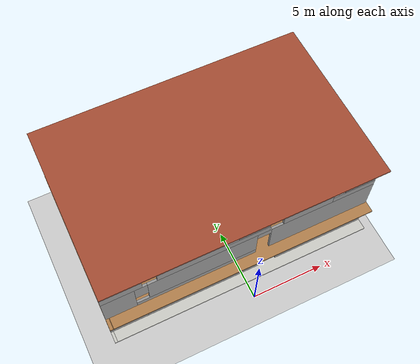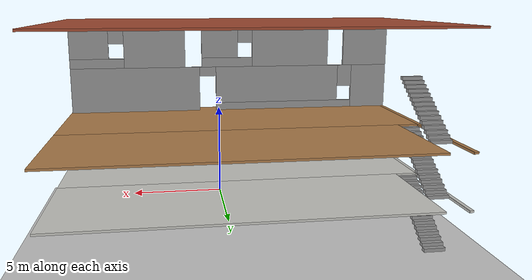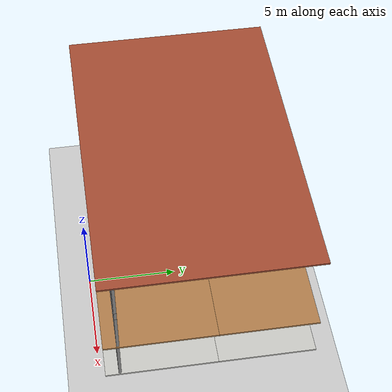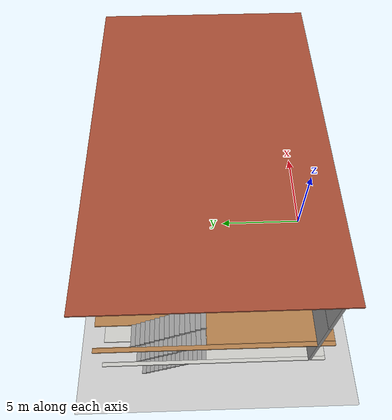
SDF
<sdf version="1.7">
 <world name="default">
  <model name="ground_plane">
   <static>1</static>
   <link name="link">
    <collision name="collision">
     <geometry><plane><normal>0 0 1</normal><size>100 100</size></plane></geometry>
     <surface>
      <contact><collide_bitmask>65535</collide_bitmask></contact>
      <friction><ode><mu>100</mu><mu2>50</mu2></ode></friction>
     </surface>
    </collision>
    <visual name="visual">
     <cast_shadows>0</cast_shadows>
     <geometry><plane><normal>0 0 1</normal><size>100 100</size></plane></geometry>
     <material>
      <script><uri>file://media/materials/scripts/gazebo.material</uri><name>Gazebo/Grey</name></script>
     </material>
    </visual>
   </link>
  </model>
  <model name="saglam_yeni_bina1">
   <pose>-0.684997 5.87917 0 0 -0 0</pose>
   <link name="Floor_4">
    <pose>0.000156 0.0375 2.5 0 -0 0</pose>
    <visual name="Floor_4_Visual_0">
     <pose>-8.68623 0 0.05 0 -0 0</pose>
     <geometry><box><size>0.173766 11.2072 0.1</size></box></geometry>
     <material>
      <script><uri>file://media/materials/scripts/gazebo.material</uri><name>Gazebo/CeilingTiled</name></script>
      <ambient>1 1 1 1</ambient>
     </material>
     <meta><layer>1</layer></meta>
    </visual>
    <collision name="Floor_4_Collision_0">
     <geometry><box><size>0.173766 11.2072 0.1</size></box></geometry>
     <pose>-8.68623 0 0.05 0 -0 0</pose>
    </collision>
    <visual name="Floor_4_Visual_1">
     <pose>0.086883 -2.61131 0.05 0 -0 0</pose>
     <geometry><box><size>17.3725 5.98458 0.1</size></box></geometry>
     <material>
      <script><uri>file://media/materials/scripts/gazebo.material</uri><name>Gazebo/CeilingTiled</name></script>
      <ambient>1 1 1 1</ambient>
     </material>
     <meta><layer>1</layer></meta>
    </visual>
    <collision name="Floor_4_Collision_1">
     <geometry><box><size>17.3725 5.98458 0.1</size></box></geometry>
     <pose>0.086883 -2.61131 0.05 0 -0 0</pose>
    </collision>
    <visual name="Floor_4_Visual_2">
     <pose>0.600108 2.99229 0.05 0 -0 0</pose>
     <geometry><box><size>16.346 5.22262 0.1</size></box></geometry>
     <material>
      <script><uri>file://media/materials/scripts/gazebo.material</uri><name>Gazebo/CeilingTiled</name></script>
      <ambient>1 1 1 1</ambient>
     </material>
     <meta><layer>1</layer></meta>
    </visual>
    <collision name="Floor_4_Collision_2">
     <geometry><box><size>16.346 5.22262 0.1</size></box></geometry>
     <pose>0.600108 2.99229 0.05 0 -0 0</pose>
    </collision>
    <visual name="Floor_4_Visual_3">
     <pose>-8.58612 4.74229 0.05 0 -0 0</pose>
     <geometry><box><size>0.02645 1.72262 0.1</size></box></geometry>
     <material>
      <script><uri>file://media/materials/scripts/gazebo.material</uri><name>Gazebo/CeilingTiled</name></script>
      <ambient>1 1 1 1</ambient>
     </material>
     <meta><layer>1</layer></meta>
    </visual>
    <collision name="Floor_4_Collision_3">
     <geometry><box><size>0.02645 1.72262 0.1</size></box></geometry>
     <pose>-8.58612 4.74229 0.05 0 -0 0</pose>
    </collision>
   </link>
   <link name="Floor_5">
    <pose>0.000156 0.0375 5 0 -0 0</pose>
    <visual name="Floor_5_Visual_0">
     <pose>-8.673 0 0.05 0 -0 0</pose>
     <geometry><box><size>0.200216 11.2072 0.1</size></box></geometry>
     <material>
      <script><uri>file://media/materials/scripts/gazebo.material</uri><name>Gazebo/Wood</name></script>
      <ambient>1 1 1 1</ambient>
     </material>
     <meta><layer>2</layer></meta>
    </visual>
    <collision name="Floor_5_Collision_0">
     <geometry><box><size>0.200216 11.2072 0.1</size></box></geometry>
     <pose>-8.673 0 0.05 0 -0 0</pose>
    </collision>
    <visual name="Floor_5_Visual_1">
     <pose>-8.55967 -2.61131 0.05 0 -0 0</pose>
     <geometry><box><size>0.02645 5.98458 0.1</size></box></geometry>
     <material>
      <script><uri>file://media/materials/scripts/gazebo.material</uri><name>Gazebo/Wood</name></script>
      <ambient>1 1 1 1</ambient>
     </material>
     <meta><layer>2</layer></meta>
    </visual>
    <collision name="Floor_5_Collision_1">
     <geometry><box><size>0.02645 5.98458 0.1</size></box></geometry>
     <pose>-8.55967 -2.61131 0.05 0 -0 0</pose>
    </collision>
    <visual name="Floor_5_Visual_2">
     <pose>0.113333 -2.62454 0.05 0 -0 0</pose>
     <geometry><box><size>17.3195 5.95813 0.1</size></box></geometry>
     <material>
      <script><uri>file://media/materials/scripts/gazebo.material</uri><name>Gazebo/Wood</name></script>
      <ambient>1 1 1 1</ambient>
     </material>
     <meta><layer>2</layer></meta>
    </visual>
    <collision name="Floor_5_Collision_2">
     <geometry><box><size>17.3195 5.95813 0.1</size></box></geometry>
     <pose>0.113333 -2.62454 0.05 0 -0 0</pose>
    </collision>
    <visual name="Floor_5_Visual_3">
     <pose>0.613333 2.97906 0.05 0 -0 0</pose>
     <geometry><box><size>16.3195 5.24907 0.1</size></box></geometry>
     <material>
      <script><uri>file://media/materials/scripts/gazebo.material</uri><name>Gazebo/Wood</name></script>
      <ambient>1 1 1 1</ambient>
     </material>
     <meta><layer>2</layer></meta>
    </visual>
    <collision name="Floor_5_Collision_3">
     <geometry><box><size>16.3195 5.24907 0.1</size></box></geometry>
     <pose>0.613333 2.97906 0.05 0 -0 0</pose>
    </collision>
    <visual name="Floor_5_Visual_4">
     <pose>-8.55967 4.74229 0.05 0 -0 0</pose>
     <geometry><box><size>0.02645 1.72262 0.1</size></box></geometry>
     <material>
      <script><uri>file://media/materials/scripts/gazebo.material</uri><name>Gazebo/Wood</name></script>
      <ambient>1 1 1 1</ambient>
     </material>
     <meta><layer>2</layer></meta>
    </visual>
    <collision name="Floor_5_Collision_4">
     <geometry><box><size>0.02645 1.72262 0.1</size></box></geometry>
     <pose>-8.55967 4.74229 0.05 0 -0 0</pose>
    </collision>
   </link>
   <link name="Floor_8">
    <collision name="Floor_8_Collision">
     <geometry><box><size>17.5462 11.2072 0.1</size></box></geometry>
     <pose>0 0 0.05 0 -0 0</pose>
    </collision>
    <visual name="Floor_8_Visual">
     <pose>0 0 0.05 0 -0 0</pose>
     <geometry><box><size>17.5462 11.2072 0.1</size></box></geometry>
     <material>
      <script><uri>file://media/materials/scripts/gazebo.material</uri><name>Gazebo/Bricks</name></script>
      <ambient>0.921569 0.807843 0.615686 1</ambient>
     </material>
     <meta><layer>4</layer></meta>
    </visual>
    <pose>-0.000157 0.037447 10 0 -0 0</pose>
   </link>
   <link name="Stairs_1">
    <visual name="Stairs_1_Visual_0">
     <pose>-8.09919 3.80181 0.083333 0 -0 0</pose>
     <geometry><box><size>1 0.233333 0.166667</size></box></geometry>
     <material>
      <script><uri>file://media/materials/scripts/gazebo.material</uri><name>Gazebo/Grey</name></script>
      <ambient>1 1 1 1</ambient>
     </material>
     <meta><layer>0</layer></meta>
    </visual>
    <collision name="Stairs_1_Collision_0">
     <geometry><box><size>1 0.233333 0.166667</size></box></geometry>
     <pose>-8.09919 3.80181 0.083333 0 -0 0</pose>
    </collision>
    <visual name="Stairs_1_Visual_1">
     <pose>-8.09919 3.56848 0.25 0 -0 0</pose>
     <geometry><box><size>1 0.233333 0.166667</size></box></geometry>
     <material>
      <script><uri>file://media/materials/scripts/gazebo.material</uri><name>Gazebo/Grey</name></script>
      <ambient>1 1 1 1</ambient>
     </material>
     <meta><layer>0</layer></meta>
    </visual>
    <collision name="Stairs_1_Collision_1">
     <geometry><box><size>1 0.233333 0.166667</size></box></geometry>
     <pose>-8.09919 3.56848 0.25 0 -0 0</pose>
    </collision>
    <visual name="Stairs_1_Visual_2">
     <pose>-8.09919 3.33514 0.416667 0 -0 0</pose>
     <geometry><box><size>1 0.233333 0.166667</size></box></geometry>
     <material>
      <script><uri>file://media/materials/scripts/gazebo.material</uri><name>Gazebo/Grey</name></script>
      <ambient>1 1 1 1</ambient>
     </material>
     <meta><layer>0</layer></meta>
    </visual>
    <collision name="Stairs_1_Collision_2">
     <geometry><box><size>1 0.233333 0.166667</size></box></geometry>
     <pose>-8.09919 3.33514 0.416667 0 -0 0</pose>
    </collision>
    <visual name="Stairs_1_Visual_3">
     <pose>-8.09919 3.10181 0.583333 0 -0 0</pose>
     <geometry><box><size>1 0.233333 0.166667</size></box></geometry>
     <material>
      <script><uri>file://media/materials/scripts/gazebo.material</uri><name>Gazebo/Grey</name></script>
      <ambient>1 1 1 1</ambient>
     </material>
     <meta><layer>0</layer></meta>
    </visual>
    <collision name="Stairs_1_Collision_3">
     <geometry><box><size>1 0.233333 0.166667</size></box></geometry>
     <pose>-8.09919 3.10181 0.583333 0 -0 0</pose>
    </collision>
    <visual name="Stairs_1_Visual_4">
     <pose>-8.09919 2.86848 0.75 0 -0 0</pose>
     <geometry><box><size>1 0.233333 0.166667</size></box></geometry>
     <material>
      <script><uri>file://media/materials/scripts/gazebo.material</uri><name>Gazebo/Grey</name></script>
      <ambient>1 1 1 1</ambient>
     </material>
     <meta><layer>0</layer></meta>
    </visual>
    <collision name="Stairs_1_Collision_4">
     <geometry><box><size>1 0.233333 0.166667</size></box></geometry>
     <pose>-8.09919 2.86848 0.75 0 -0 0</pose>
    </collision>
    <visual name="Stairs_1_Visual_5">
     <pose>-8.09919 2.63514 0.916667 0 -0 0</pose>
     <geometry><box><size>1 0.233333 0.166667</size></box></geometry>
     <material>
      <script><uri>file://media/materials/scripts/gazebo.material</uri><name>Gazebo/Grey</name></script>
      <ambient>1 1 1 1</ambient>
     </material>
     <meta><layer>0</layer></meta>
    </visual>
    <collision name="Stairs_1_Collision_5">
     <geometry><box><size>1 0.233333 0.166667</size></box></geometry>
     <pose>-8.09919 2.63514 0.916667 0 -0 0</pose>
    </collision>
    <visual name="Stairs_1_Visual_6">
     <pose>-8.09919 2.40181 1.08333 0 -0 0</pose>
     <geometry><box><size>1 0.233333 0.166667</size></box></geometry>
     <material>
      <script><uri>file://media/materials/scripts/gazebo.material</uri><name>Gazebo/Grey</name></script>
      <ambient>1 1 1 1</ambient>
     </material>
     <meta><layer>0</layer></meta>
    </visual>
    <collision name="Stairs_1_Collision_6">
     <geometry><box><size>1 0.233333 0.166667</size></box></geometry>
     <pose>-8.09919 2.40181 1.08333 0 -0 0</pose>
    </collision>
    <visual name="Stairs_1_Visual_7">
     <pose>-8.09919 2.16848 1.25 0 -0 0</pose>
     <geometry><box><size>1 0.233333 0.166667</size></box></geometry>
     <material>
      <script><uri>file://media/materials/scripts/gazebo.material</uri><name>Gazebo/Grey</name></script>
      <ambient>1 1 1 1</ambient>
     </material>
     <meta><layer>0</layer></meta>
    </visual>
    <collision name="Stairs_1_Collision_7">
     <geometry><box><size>1 0.233333 0.166667</size></box></geometry>
     <pose>-8.09919 2.16848 1.25 0 -0 0</pose>
    </collision>
    <visual name="Stairs_1_Visual_8">
     <pose>-8.09919 1.93514 1.41667 0 -0 0</pose>
     <geometry><box><size>1 0.233333 0.166667</size></box></geometry>
     <material>
      <script><uri>file://media/materials/scripts/gazebo.material</uri><name>Gazebo/Grey</name></script>
      <ambient>1 1 1 1</ambient>
     </material>
     <meta><layer>0</layer></meta>
    </visual>
    <collision name="Stairs_1_Collision_8">
     <geometry><box><size>1 0.233333 0.166667</size></box></geometry>
     <pose>-8.09919 1.93514 1.41667 0 -0 0</pose>
    </collision>
    <visual name="Stairs_1_Visual_9">
     <pose>-8.09919 1.70181 1.58333 0 -0 0</pose>
     <geometry><box><size>1 0.233333 0.166667</size></box></geometry>
     <material>
      <script><uri>file://media/materials/scripts/gazebo.material</uri><name>Gazebo/Grey</name></script>
      <ambient>1 1 1 1</ambient>
     </material>
     <meta><layer>0</layer></meta>
    </visual>
    <collision name="Stairs_1_Collision_9">
     <geometry><box><size>1 0.233333 0.166667</size></box></geometry>
     <pose>-8.09919 1.70181 1.58333 0 -0 0</pose>
    </collision>
    <visual name="Stairs_1_Visual_10">
     <pose>-8.09919 1.46848 1.75 0 -0 0</pose>
     <geometry><box><size>1 0.233333 0.166667</size></box></geometry>
     <material>
      <script><uri>file://media/materials/scripts/gazebo.material</uri><name>Gazebo/Grey</name></script>
      <ambient>1 1 1 1</ambient>
     </material>
     <meta><layer>0</layer></meta>
    </visual>
    <collision name="Stairs_1_Collision_10">
     <geometry><box><size>1 0.233333 0.166667</size></box></geometry>
     <pose>-8.09919 1.46848 1.75 0 -0 0</pose>
    </collision>
    <visual name="Stairs_1_Visual_11">
     <pose>-8.09919 1.23514 1.91667 0 -0 0</pose>
     <geometry><box><size>1 0.233333 0.166667</size></box></geometry>
     <material>
      <script><uri>file://media/materials/scripts/gazebo.material</uri><name>Gazebo/Grey</name></script>
      <ambient>1 1 1 1</ambient>
     </material>
     <meta><layer>0</layer></meta>
    </visual>
    <collision name="Stairs_1_Collision_11">
     <geometry><box><size>1 0.233333 0.166667</size></box></geometry>
     <pose>-8.09919 1.23514 1.91667 0 -0 0</pose>
    </collision>
    <visual name="Stairs_1_Visual_12">
     <pose>-8.09919 1.00181 2.08333 0 -0 0</pose>
     <geometry><box><size>1 0.233333 0.166667</size></box></geometry>
     <material>
      <script><uri>file://media/materials/scripts/gazebo.material</uri><name>Gazebo/Grey</name></script>
      <ambient>1 1 1 1</ambient>
     </material>
     <meta><layer>0</layer></meta>
    </visual>
    <collision name="Stairs_1_Collision_12">
     <geometry><box><size>1 0.233333 0.166667</size></box></geometry>
     <pose>-8.09919 1.00181 2.08333 0 -0 0</pose>
    </collision>
    <visual name="Stairs_1_Visual_13">
     <pose>-8.09919 0.768477 2.25 0 -0 0</pose>
     <geometry><box><size>1 0.233333 0.166667</size></box></geometry>
     <material>
      <script><uri>file://media/materials/scripts/gazebo.material</uri><name>Gazebo/Grey</name></script>
      <ambient>1 1 1 1</ambient>
     </material>
     <meta><layer>0</layer></meta>
    </visual>
    <collision name="Stairs_1_Collision_13">
     <geometry><box><size>1 0.233333 0.166667</size></box></geometry>
     <pose>-8.09919 0.768477 2.25 0 -0 0</pose>
    </collision>
    <visual name="Stairs_1_Visual_14">
     <pose>-8.09919 0.535143 2.41667 0 -0 0</pose>
     <geometry><box><size>1 0.233333 0.166667</size></box></geometry>
     <material>
      <script><uri>file://media/materials/scripts/gazebo.material</uri><name>Gazebo/Grey</name></script>
      <ambient>1 1 1 1</ambient>
     </material>
     <meta><layer>0</layer></meta>
    </visual>
    <collision name="Stairs_1_Collision_14">
     <geometry><box><size>1 0.233333 0.166667</size></box></geometry>
     <pose>-8.09919 0.535143 2.41667 0 -0 0</pose>
    </collision>
   </link>
   <link name="Stairs_2">
    <visual name="Stairs_2_Visual_0">
     <pose>-8.07274 3.80181 2.58333 0 -0 0</pose>
     <geometry><box><size>1 0.233333 0.166667</size></box></geometry>
     <material>
      <script><uri>file://media/materials/scripts/gazebo.material</uri><name>Gazebo/Grey</name></script>
      <ambient>1 1 1 1</ambient>
     </material>
     <meta><layer>1</layer></meta>
    </visual>
    <collision name="Stairs_2_Collision_0">
     <geometry><box><size>1 0.233333 0.166667</size></box></geometry>
     <pose>-8.07274 3.80181 2.58333 0 -0 0</pose>
    </collision>
    <visual name="Stairs_2_Visual_1">
     <pose>-8.07274 3.56848 2.75 0 -0 0</pose>
     <geometry><box><size>1 0.233333 0.166667</size></box></geometry>
     <material>
      <script><uri>file://media/materials/scripts/gazebo.material</uri><name>Gazebo/Grey</name></script>
      <ambient>1 1 1 1</ambient>
     </material>
     <meta><layer>1</layer></meta>
    </visual>
    <collision name="Stairs_2_Collision_1">
     <geometry><box><size>1 0.233333 0.166667</size></box></geometry>
     <pose>-8.07274 3.56848 2.75 0 -0 0</pose>
    </collision>
    <visual name="Stairs_2_Visual_2">
     <pose>-8.07274 3.33514 2.91667 0 -0 0</pose>
     <geometry><box><size>1 0.233333 0.166667</size></box></geometry>
     <material>
      <script><uri>file://media/materials/scripts/gazebo.material</uri><name>Gazebo/Grey</name></script>
      <ambient>1 1 1 1</ambient>
     </material>
     <meta><layer>1</layer></meta>
    </visual>
    <collision name="Stairs_2_Collision_2">
     <geometry><box><size>1 0.233333 0.166667</size></box></geometry>
     <pose>-8.07274 3.33514 2.91667 0 -0 0</pose>
    </collision>
    <visual name="Stairs_2_Visual_3">
     <pose>-8.07274 3.10181 3.08333 0 -0 0</pose>
     <geometry><box><size>1 0.233333 0.166667</size></box></geometry>
     <material>
      <script><uri>file://media/materials/scripts/gazebo.material</uri><name>Gazebo/Grey</name></script>
      <ambient>1 1 1 1</ambient>
     </material>
     <meta><layer>1</layer></meta>
    </visual>
    <collision name="Stairs_2_Collision_3">
     <geometry><box><size>1 0.233333 0.166667</size></box></geometry>
     <pose>-8.07274 3.10181 3.08333 0 -0 0</pose>
    </collision>
    <visual name="Stairs_2_Visual_4">
     <pose>-8.07274 2.86848 3.25 0 -0 0</pose>
     <geometry><box><size>1 0.233333 0.166667</size></box></geometry>
     <material>
      <script><uri>file://media/materials/scripts/gazebo.material</uri><name>Gazebo/Grey</name></script>
      <ambient>1 1 1 1</ambient>
     </material>
     <meta><layer>1</layer></meta>
    </visual>
    <collision name="Stairs_2_Collision_4">
     <geometry><box><size>1 0.233333 0.166667</size></box></geometry>
     <pose>-8.07274 2.86848 3.25 0 -0 0</pose>
    </collision>
    <visual name="Stairs_2_Visual_5">
     <pose>-8.07274 2.63514 3.41667 0 -0 0</pose>
     <geometry><box><size>1 0.233333 0.166667</size></box></geometry>
     <material>
      <script><uri>file://media/materials/scripts/gazebo.material</uri><name>Gazebo/Grey</name></script>
      <ambient>1 1 1 1</ambient>
     </material>
     <meta><layer>1</layer></meta>
    </visual>
    <collision name="Stairs_2_Collision_5">
     <geometry><box><size>1 0.233333 0.166667</size></box></geometry>
     <pose>-8.07274 2.63514 3.41667 0 -0 0</pose>
    </collision>
    <visual name="Stairs_2_Visual_6">
     <pose>-8.07274 2.40181 3.58333 0 -0 0</pose>
     <geometry><box><size>1 0.233333 0.166667</size></box></geometry>
     <material>
      <script><uri>file://media/materials/scripts/gazebo.material</uri><name>Gazebo/Grey</name></script>
      <ambient>1 1 1 1</ambient>
     </material>
     <meta><layer>1</layer></meta>
    </visual>
    <collision name="Stairs_2_Collision_6">
     <geometry><box><size>1 0.233333 0.166667</size></box></geometry>
     <pose>-8.07274 2.40181 3.58333 0 -0 0</pose>
    </collision>
    <visual name="Stairs_2_Visual_7">
     <pose>-8.07274 2.16848 3.75 0 -0 0</pose>
     <geometry><box><size>1 0.233333 0.166667</size></box></geometry>
     <material>
      <script><uri>file://media/materials/scripts/gazebo.material</uri><name>Gazebo/Grey</name></script>
      <ambient>1 1 1 1</ambient>
     </material>
     <meta><layer>1</layer></meta>
    </visual>
    <collision name="Stairs_2_Collision_7">
     <geometry><box><size>1 0.233333 0.166667</size></box></geometry>
     <pose>-8.07274 2.16848 3.75 0 -0 0</pose>
    </collision>
    <visual name="Stairs_2_Visual_8">
     <pose>-8.07274 1.93514 3.91667 0 -0 0</pose>
     <geometry><box><size>1 0.233333 0.166667</size></box></geometry>
     <material>
      <script><uri>file://media/materials/scripts/gazebo.material</uri><name>Gazebo/Grey</name></script>
      <ambient>1 1 1 1</ambient>
     </material>
     <meta><layer>1</layer></meta>
    </visual>
    <collision name="Stairs_2_Collision_8">
     <geometry><box><size>1 0.233333 0.166667</size></box></geometry>
     <pose>-8.07274 1.93514 3.91667 0 -0 0</pose>
    </collision>
    <visual name="Stairs_2_Visual_9">
     <pose>-8.07274 1.70181 4.08333 0 -0 0</pose>
     <geometry><box><size>1 0.233333 0.166667</size></box></geometry>
     <material>
      <script><uri>file://media/materials/scripts/gazebo.material</uri><name>Gazebo/Grey</name></script>
      <ambient>1 1 1 1</ambient>
     </material>
     <meta><layer>1</layer></meta>
    </visual>
    <collision name="Stairs_2_Collision_9">
     <geometry><box><size>1 0.233333 0.166667</size></box></geometry>
     <pose>-8.07274 1.70181 4.08333 0 -0 0</pose>
    </collision>
    <visual name="Stairs_2_Visual_10">
     <pose>-8.07274 1.46848 4.25 0 -0 0</pose>
     <geometry><box><size>1 0.233333 0.166667</size></box></geometry>
     <material>
      <script><uri>file://media/materials/scripts/gazebo.material</uri><name>Gazebo/Grey</name></script>
      <ambient>1 1 1 1</ambient>
     </material>
     <meta><layer>1</layer></meta>
    </visual>
    <collision name="Stairs_2_Collision_10">
     <geometry><box><size>1 0.233333 0.166667</size></box></geometry>
     <pose>-8.07274 1.46848 4.25 0 -0 0</pose>
    </collision>
    <visual name="Stairs_2_Visual_11">
     <pose>-8.07274 1.23514 4.41667 0 -0 0</pose>
     <geometry><box><size>1 0.233333 0.166667</size></box></geometry>
     <material>
      <script><uri>file://media/materials/scripts/gazebo.material</uri><name>Gazebo/Grey</name></script>
      <ambient>1 1 1 1</ambient>
     </material>
     <meta><layer>1</layer></meta>
    </visual>
    <collision name="Stairs_2_Collision_11">
     <geometry><box><size>1 0.233333 0.166667</size></box></geometry>
     <pose>-8.07274 1.23514 4.41667 0 -0 0</pose>
    </collision>
    <visual name="Stairs_2_Visual_12">
     <pose>-8.07274 1.00181 4.58333 0 -0 0</pose>
     <geometry><box><size>1 0.233333 0.166667</size></box></geometry>
     <material>
      <script><uri>file://media/materials/scripts/gazebo.material</uri><name>Gazebo/Grey</name></script>
      <ambient>1 1 1 1</ambient>
     </material>
     <meta><layer>1</layer></meta>
    </visual>
    <collision name="Stairs_2_Collision_12">
     <geometry><box><size>1 0.233333 0.166667</size></box></geometry>
     <pose>-8.07274 1.00181 4.58333 0 -0 0</pose>
    </collision>
    <visual name="Stairs_2_Visual_13">
     <pose>-8.07274 0.768477 4.75 0 -0 0</pose>
     <geometry><box><size>1 0.233333 0.166667</size></box></geometry>
     <material>
      <script><uri>file://media/materials/scripts/gazebo.material</uri><name>Gazebo/Grey</name></script>
      <ambient>1 1 1 1</ambient>
     </material>
     <meta><layer>1</layer></meta>
    </visual>
    <collision name="Stairs_2_Collision_13">
     <geometry><box><size>1 0.233333 0.166667</size></box></geometry>
     <pose>-8.07274 0.768477 4.75 0 -0 0</pose>
    </collision>
    <visual name="Stairs_2_Visual_14">
     <pose>-8.07274 0.535143 4.91667 0 -0 0</pose>
     <geometry><box><size>1 0.233333 0.166667</size></box></geometry>
     <material>
      <script><uri>file://media/materials/scripts/gazebo.material</uri><name>Gazebo/Grey</name></script>
      <ambient>1 1 1 1</ambient>
     </material>
     <meta><layer>1</layer></meta>
    </visual>
    <collision name="Stairs_2_Collision_14">
     <geometry><box><size>1 0.233333 0.166667</size></box></geometry>
     <pose>-8.07274 0.535143 4.91667 0 -0 0</pose>
    </collision>
   </link>
   <link name="Stairs_3">
    <visual name="Stairs_3_Visual_0">
     <pose>-8.04629 3.77536 5.08333 0 -0 0</pose>
     <geometry><box><size>1 0.233333 0.166667</size></box></geometry>
     <material>
      <script><uri>file://media/materials/scripts/gazebo.material</uri><name>Gazebo/Grey</name></script>
      <ambient>1 1 1 1</ambient>
     </material>
     <meta><layer>2</layer></meta>
    </visual>
    <collision name="Stairs_3_Collision_0">
     <geometry><box><size>1 0.233333 0.166667</size></box></geometry>
     <pose>-8.04629 3.77536 5.08333 0 -0 0</pose>
    </collision>
    <visual name="Stairs_3_Visual_1">
     <pose>-8.04629 3.54203 5.25 0 -0 0</pose>
     <geometry><box><size>1 0.233333 0.166667</size></box></geometry>
     <material>
      <script><uri>file://media/materials/scripts/gazebo.material</uri><name>Gazebo/Grey</name></script>
      <ambient>1 1 1 1</ambient>
     </material>
     <meta><layer>2</layer></meta>
    </visual>
    <collision name="Stairs_3_Collision_1">
     <geometry><box><size>1 0.233333 0.166667</size></box></geometry>
     <pose>-8.04629 3.54203 5.25 0 -0 0</pose>
    </collision>
    <visual name="Stairs_3_Visual_2">
     <pose>-8.04629 3.30869 5.41667 0 -0 0</pose>
     <geometry><box><size>1 0.233333 0.166667</size></box></geometry>
     <material>
      <script><uri>file://media/materials/scripts/gazebo.material</uri><name>Gazebo/Grey</name></script>
      <ambient>1 1 1 1</ambient>
     </material>
     <meta><layer>2</layer></meta>
    </visual>
    <collision name="Stairs_3_Collision_2">
     <geometry><box><size>1 0.233333 0.166667</size></box></geometry>
     <pose>-8.04629 3.30869 5.41667 0 -0 0</pose>
    </collision>
    <visual name="Stairs_3_Visual_3">
     <pose>-8.04629 3.07536 5.58333 0 -0 0</pose>
     <geometry><box><size>1 0.233333 0.166667</size></box></geometry>
     <material>
      <script><uri>file://media/materials/scripts/gazebo.material</uri><name>Gazebo/Grey</name></script>
      <ambient>1 1 1 1</ambient>
     </material>
     <meta><layer>2</layer></meta>
    </visual>
    <collision name="Stairs_3_Collision_3">
     <geometry><box><size>1 0.233333 0.166667</size></box></geometry>
     <pose>-8.04629 3.07536 5.58333 0 -0 0</pose>
    </collision>
    <visual name="Stairs_3_Visual_4">
     <pose>-8.04629 2.84203 5.75 0 -0 0</pose>
     <geometry><box><size>1 0.233333 0.166667</size></box></geometry>
     <material>
      <script><uri>file://media/materials/scripts/gazebo.material</uri><name>Gazebo/Grey</name></script>
      <ambient>1 1 1 1</ambient>
     </material>
     <meta><layer>2</layer></meta>
    </visual>
    <collision name="Stairs_3_Collision_4">
     <geometry><box><size>1 0.233333 0.166667</size></box></geometry>
     <pose>-8.04629 2.84203 5.75 0 -0 0</pose>
    </collision>
    <visual name="Stairs_3_Visual_5">
     <pose>-8.04629 2.60869 5.91667 0 -0 0</pose>
     <geometry><box><size>1 0.233333 0.166667</size></box></geometry>
     <material>
      <script><uri>file://media/materials/scripts/gazebo.material</uri><name>Gazebo/Grey</name></script>
      <ambient>1 1 1 1</ambient>
     </material>
     <meta><layer>2</layer></meta>
    </visual>
    <collision name="Stairs_3_Collision_5">
     <geometry><box><size>1 0.233333 0.166667</size></box></geometry>
     <pose>-8.04629 2.60869 5.91667 0 -0 0</pose>
    </collision>
    <visual name="Stairs_3_Visual_6">
     <pose>-8.04629 2.37536 6.08333 0 -0 0</pose>
     <geometry><box><size>1 0.233333 0.166667</size></box></geometry>
     <material>
      <script><uri>file://media/materials/scripts/gazebo.material</uri><name>Gazebo/Grey</name></script>
      <ambient>1 1 1 1</ambient>
     </material>
     <meta><layer>2</layer></meta>
    </visual>
    <collision name="Stairs_3_Collision_6">
     <geometry><box><size>1 0.233333 0.166667</size></box></geometry>
     <pose>-8.04629 2.37536 6.08333 0 -0 0</pose>
    </collision>
    <visual name="Stairs_3_Visual_7">
     <pose>-8.04629 2.14203 6.25 0 -0 0</pose>
     <geometry><box><size>1 0.233333 0.166667</size></box></geometry>
     <material>
      <script><uri>file://media/materials/scripts/gazebo.material</uri><name>Gazebo/Grey</name></script>
      <ambient>1 1 1 1</ambient>
     </material>
     <meta><layer>2</layer></meta>
    </visual>
    <collision name="Stairs_3_Collision_7">
     <geometry><box><size>1 0.233333 0.166667</size></box></geometry>
     <pose>-8.04629 2.14203 6.25 0 -0 0</pose>
    </collision>
    <visual name="Stairs_3_Visual_8">
     <pose>-8.04629 1.90869 6.41667 0 -0 0</pose>
     <geometry><box><size>1 0.233333 0.166667</size></box></geometry>
     <material>
      <script><uri>file://media/materials/scripts/gazebo.material</uri><name>Gazebo/Grey</name></script>
      <ambient>1 1 1 1</ambient>
     </material>
     <meta><layer>2</layer></meta>
    </visual>
    <collision name="Stairs_3_Collision_8">
     <geometry><box><size>1 0.233333 0.166667</size></box></geometry>
     <pose>-8.04629 1.90869 6.41667 0 -0 0</pose>
    </collision>
    <visual name="Stairs_3_Visual_9">
     <pose>-8.04629 1.67536 6.58333 0 -0 0</pose>
     <geometry><box><size>1 0.233333 0.166667</size></box></geometry>
     <material>
      <script><uri>file://media/materials/scripts/gazebo.material</uri><name>Gazebo/Grey</name></script>
      <ambient>1 1 1 1</ambient>
     </material>
     <meta><layer>2</layer></meta>
    </visual>
    <collision name="Stairs_3_Collision_9">
     <geometry><box><size>1 0.233333 0.166667</size></box></geometry>
     <pose>-8.04629 1.67536 6.58333 0 -0 0</pose>
    </collision>
    <visual name="Stairs_3_Visual_10">
     <pose>-8.04629 1.44203 6.75 0 -0 0</pose>
     <geometry><box><size>1 0.233333 0.166667</size></box></geometry>
     <material>
      <script><uri>file://media/materials/scripts/gazebo.material</uri><name>Gazebo/Grey</name></script>
      <ambient>1 1 1 1</ambient>
     </material>
     <meta><layer>2</layer></meta>
    </visual>
    <collision name="Stairs_3_Collision_10">
     <geometry><box><size>1 0.233333 0.166667</size></box></geometry>
     <pose>-8.04629 1.44203 6.75 0 -0 0</pose>
    </collision>
    <visual name="Stairs_3_Visual_11">
     <pose>-8.04629 1.20869 6.91667 0 -0 0</pose>
     <geometry><box><size>1 0.233333 0.166667</size></box></geometry>
     <material>
      <script><uri>file://media/materials/scripts/gazebo.material</uri><name>Gazebo/Grey</name></script>
      <ambient>1 1 1 1</ambient>
     </material>
     <meta><layer>2</layer></meta>
    </visual>
    <collision name="Stairs_3_Collision_11">
     <geometry><box><size>1 0.233333 0.166667</size></box></geometry>
     <pose>-8.04629 1.20869 6.91667 0 -0 0</pose>
    </collision>
    <visual name="Stairs_3_Visual_12">
     <pose>-8.04629 0.97536 7.08333 0 -0 0</pose>
     <geometry><box><size>1 0.233333 0.166667</size></box></geometry>
     <material>
      <script><uri>file://media/materials/scripts/gazebo.material</uri><name>Gazebo/Grey</name></script>
      <ambient>1 1 1 1</ambient>
     </material>
     <meta><layer>2</layer></meta>
    </visual>
    <collision name="Stairs_3_Collision_12">
     <geometry><box><size>1 0.233333 0.166667</size></box></geometry>
     <pose>-8.04629 0.97536 7.08333 0 -0 0</pose>
    </collision>
    <visual name="Stairs_3_Visual_13">
     <pose>-8.04629 0.742026 7.25 0 -0 0</pose>
     <geometry><box><size>1 0.233333 0.166667</size></box></geometry>
     <material>
      <script><uri>file://media/materials/scripts/gazebo.material</uri><name>Gazebo/Grey</name></script>
      <ambient>1 1 1 1</ambient>
     </material>
     <meta><layer>2</layer></meta>
    </visual>
    <collision name="Stairs_3_Collision_13">
     <geometry><box><size>1 0.233333 0.166667</size></box></geometry>
     <pose>-8.04629 0.742026 7.25 0 -0 0</pose>
    </collision>
    <visual name="Stairs_3_Visual_14">
     <pose>-8.04629 0.508693 7.41667 0 -0 0</pose>
     <geometry><box><size>1 0.233333 0.166667</size></box></geometry>
     <material>
      <script><uri>file://media/materials/scripts/gazebo.material</uri><name>Gazebo/Grey</name></script>
      <ambient>1 1 1 1</ambient>
     </material>
     <meta><layer>2</layer></meta>
    </visual>
    <collision name="Stairs_3_Collision_14">
     <geometry><box><size>1 0.233333 0.166667</size></box></geometry>
     <pose>-8.04629 0.508693 7.41667 0 -0 0</pose>
    </collision>
   </link>
   <link name="Wall_49">
    <pose>-0.022952 -4.7839 2.5 0 -0 0</pose>
    <visual name="Wall_49_Visual_0">
     <pose>-7.49981 0 1.25 0 -0 0</pose>
     <geometry><box><size>2.50039 0.15 2.5</size></box></geometry>
     <material>
      <script><uri>file://media/materials/scripts/gazebo.material</uri><name>Gazebo/Grey</name></script>
      <ambient>1 1 1 1</ambient>
     </material>
     <meta><layer>1</layer></meta>
    </visual>
    <collision name="Wall_49_Collision_0">
     <geometry><box><size>2.50039 0.15 2.5</size></box></geometry>
     <pose>-7.49981 0 1.25 0 -0 0</pose>
    </collision>
    <visual name="Wall_49_Visual_1">
     <pose>5.63534 0 1.25 0 -0 0</pose>
     <geometry><box><size>6.22933 0.15 2.5</size></box></geometry>
     <material>
      <script><uri>file://media/materials/scripts/gazebo.material</uri><name>Gazebo/Grey</name></script>
      <ambient>1 1 1 1</ambient>
     </material>
     <meta><layer>1</layer></meta>
    </visual>
    <collision name="Wall_49_Collision_1">
     <geometry><box><size>6.22933 0.15 2.5</size></box></geometry>
     <pose>5.63534 0 1.25 0 -0 0</pose>
    </collision>
    <visual name="Wall_49_Visual_2">
     <pose>-2.31447 0 0.25 0 -0 0</pose>
     <geometry><box><size>7.87029 0.15 0.5</size></box></geometry>
     <material>
      <script><uri>file://media/materials/scripts/gazebo.material</uri><name>Gazebo/Grey</name></script>
      <ambient>1 1 1 1</ambient>
     </material>
     <meta><layer>1</layer></meta>
    </visual>
    <collision name="Wall_49_Collision_2">
     <geometry><box><size>7.87029 0.15 0.5</size></box></geometry>
     <pose>-2.31447 0 0.25 0 -0 0</pose>
    </collision>
    <visual name="Wall_49_Visual_3">
     <pose>-1.91447 0 1.5 0 -0 0</pose>
     <geometry><box><size>7.07029 0.15 2</size></box></geometry>
     <material>
      <script><uri>file://media/materials/scripts/gazebo.material</uri><name>Gazebo/Grey</name></script>
      <ambient>1 1 1 1</ambient>
     </material>
     <meta><layer>1</layer></meta>
    </visual>
    <collision name="Wall_49_Collision_3">
     <geometry><box><size>7.07029 0.15 2</size></box></geometry>
     <pose>-1.91447 0 1.5 0 -0 0</pose>
    </collision>
    <visual name="Wall_49_Visual_4">
     <pose>-5.84962 0 1.9 0 -0 0</pose>
     <geometry><box><size>0.8 0.15 1.2</size></box></geometry>
     <material>
      <script><uri>file://media/materials/scripts/gazebo.material</uri><name>Gazebo/Grey</name></script>
      <ambient>1 1 1 1</ambient>
     </material>
     <meta><layer>1</layer></meta>
    </visual>
    <collision name="Wall_49_Collision_4">
     <geometry><box><size>0.8 0.15 1.2</size></box></geometry>
     <pose>-5.84962 0 1.9 0 -0 0</pose>
    </collision>
    <visual name="Wall_49_Visual_5">
     <pose>2.07068 0 2.25 0 -0 0</pose>
     <geometry><box><size>0.9 0.15 0.5</size></box></geometry>
     <material>
      <script><uri>file://media/materials/scripts/gazebo.material</uri><name>Gazebo/Grey</name></script>
      <ambient>1 1 1 1</ambient>
     </material>
     <meta><layer>1</layer></meta>
    </visual>
    <collision name="Wall_49_Collision_5">
     <geometry><box><size>0.9 0.15 0.5</size></box></geometry>
     <pose>2.07068 0 2.25 0 -0 0</pose>
    </collision>
   </link>
   <link name="Wall_59">
    <pose>-0.022952 -4.7839 5 0 -0 0</pose>
    <visual name="Wall_59_Visual_0">
     <pose>-7.74732 0 1.25 0 -0 0</pose>
     <geometry><box><size>2.00537 0.15 2.5</size></box></geometry>
     <material>
      <script><uri>file://media/materials/scripts/gazebo.material</uri><name>Gazebo/Grey</name></script>
      <ambient>1 1 1 1</ambient>
     </material>
     <meta><layer>2</layer></meta>
    </visual>
    <collision name="Wall_59_Collision_0">
     <geometry><box><size>2.00537 0.15 2.5</size></box></geometry>
     <pose>-7.74732 0 1.25 0 -0 0</pose>
    </collision>
    <visual name="Wall_59_Visual_1">
     <pose>5.31048 0 1.25 0 -0 0</pose>
     <geometry><box><size>6.87904 0.15 2.5</size></box></geometry>
     <material>
      <script><uri>file://media/materials/scripts/gazebo.material</uri><name>Gazebo/Grey</name></script>
      <ambient>1 1 1 1</ambient>
     </material>
     <meta><layer>2</layer></meta>
    </visual>
    <collision name="Wall_59_Collision_1">
     <geometry><box><size>6.87904 0.15 2.5</size></box></geometry>
     <pose>5.31048 0 1.25 0 -0 0</pose>
    </collision>
    <visual name="Wall_59_Visual_2">
     <pose>-2.88684 0 0.25 0 -0 0</pose>
     <geometry><box><size>7.7156 0.15 0.5</size></box></geometry>
     <material>
      <script><uri>file://media/materials/scripts/gazebo.material</uri><name>Gazebo/Grey</name></script>
      <ambient>1 1 1 1</ambient>
     </material>
     <meta><layer>2</layer></meta>
    </visual>
    <collision name="Wall_59_Collision_2">
     <geometry><box><size>7.7156 0.15 0.5</size></box></geometry>
     <pose>-2.88684 0 0.25 0 -0 0</pose>
    </collision>
    <visual name="Wall_59_Visual_3">
     <pose>-2.48684 0 1.5 0 -0 0</pose>
     <geometry><box><size>6.9156 0.15 2</size></box></geometry>
     <material>
      <script><uri>file://media/materials/scripts/gazebo.material</uri><name>Gazebo/Grey</name></script>
      <ambient>1 1 1 1</ambient>
     </material>
     <meta><layer>2</layer></meta>
    </visual>
    <collision name="Wall_59_Collision_3">
     <geometry><box><size>6.9156 0.15 2</size></box></geometry>
     <pose>-2.48684 0 1.5 0 -0 0</pose>
    </collision>
    <visual name="Wall_59_Visual_4">
     <pose>-6.34463 0 1.9 0 -0 0</pose>
     <geometry><box><size>0.8 0.15 1.2</size></box></geometry>
     <material>
      <script><uri>file://media/materials/scripts/gazebo.material</uri><name>Gazebo/Grey</name></script>
      <ambient>1 1 1 1</ambient>
     </material>
     <meta><layer>2</layer></meta>
    </visual>
    <collision name="Wall_59_Collision_4">
     <geometry><box><size>0.8 0.15 1.2</size></box></geometry>
     <pose>-6.34463 0 1.9 0 -0 0</pose>
    </collision>
    <visual name="Wall_59_Visual_5">
     <pose>1.42096 0 2.25 0 -0 0</pose>
     <geometry><box><size>0.9 0.15 0.5</size></box></geometry>
     <material>
      <script><uri>file://media/materials/scripts/gazebo.material</uri><name>Gazebo/Grey</name></script>
      <ambient>1 1 1 1</ambient>
     </material>
     <meta><layer>2</layer></meta>
    </visual>
    <collision name="Wall_59_Collision_5">
     <geometry><box><size>0.9 0.15 0.5</size></box></geometry>
     <pose>1.42096 0 2.25 0 -0 0</pose>
    </collision>
   </link>
   <link name="Wall_69">
    <pose>-0.022952 -4.7839 7.5 0 -0 0</pose>
    <visual name="Wall_69_Visual_0">
     <pose>-7.49387 0 1.25 0 -0 0</pose>
     <geometry><box><size>2.51226 0.15 2.5</size></box></geometry>
     <material>
      <script><uri>file://media/materials/scripts/gazebo.material</uri><name>Gazebo/Grey</name></script>
      <ambient>1 1 1 1</ambient>
     </material>
     <meta><layer>3</layer></meta>
    </visual>
    <collision name="Wall_69_Collision_0">
     <geometry><box><size>2.51226 0.15 2.5</size></box></geometry>
     <pose>-7.49387 0 1.25 0 -0 0</pose>
    </collision>
    <visual name="Wall_69_Visual_1">
     <pose>-3.19483 0 1.25 0 -0 0</pose>
     <geometry><box><size>4.28581 0.15 2.5</size></box></geometry>
     <material>
      <script><uri>file://media/materials/scripts/gazebo.material</uri><name>Gazebo/Grey</name></script>
      <ambient>1 1 1 1</ambient>
     </material>
     <meta><layer>3</layer></meta>
    </visual>
    <collision name="Wall_69_Collision_1">
     <geometry><box><size>4.28581 0.15 2.5</size></box></geometry>
     <pose>-3.19483 0 1.25 0 -0 0</pose>
    </collision>
    <visual name="Wall_69_Visual_2">
     <pose>4.27685 0 1.25 0 -0 0</pose>
     <geometry><box><size>3.26484 0.15 2.5</size></box></geometry>
     <material>
      <script><uri>file://media/materials/scripts/gazebo.material</uri><name>Gazebo/Grey</name></script>
      <ambient>1 1 1 1</ambient>
     </material>
     <meta><layer>3</layer></meta>
    </visual>
    <collision name="Wall_69_Collision_2">
     <geometry><box><size>3.26484 0.15 2.5</size></box></geometry>
     <pose>4.27685 0 1.25 0 -0 0</pose>
    </collision>
    <visual name="Wall_69_Visual_3">
     <pose>0.346252 0 0.25 0 -0 0</pose>
     <geometry><box><size>2.79635 0.15 0.5</size></box></geometry>
     <material>
      <script><uri>file://media/materials/scripts/gazebo.material</uri><name>Gazebo/Grey</name></script>
      <ambient>1 1 1 1</ambient>
     </material>
     <meta><layer>3</layer></meta>
    </visual>
    <collision name="Wall_69_Collision_3">
     <geometry><box><size>2.79635 0.15 0.5</size></box></geometry>
     <pose>0.346252 0 0.25 0 -0 0</pose>
    </collision>
    <visual name="Wall_69_Visual_4">
     <pose>7.32963 0 0.25 0 -0 0</pose>
     <geometry><box><size>2.84073 0.15 0.5</size></box></geometry>
     <material>
      <script><uri>file://media/materials/scripts/gazebo.material</uri><name>Gazebo/Grey</name></script>
      <ambient>1 1 1 1</ambient>
     </material>
     <meta><layer>3</layer></meta>
    </visual>
    <collision name="Wall_69_Collision_4">
     <geometry><box><size>2.84073 0.15 0.5</size></box></geometry>
     <pose>7.32963 0 0.25 0 -0 0</pose>
    </collision>
    <visual name="Wall_69_Visual_5">
     <pose>0.746252 0 1.5 0 -0 0</pose>
     <geometry><box><size>1.99635 0.15 2</size></box></geometry>
     <material>
      <script><uri>file://media/materials/scripts/gazebo.material</uri><name>Gazebo/Grey</name></script>
      <ambient>1 1 1 1</ambient>
     </material>
     <meta><layer>3</layer></meta>
    </visual>
    <collision name="Wall_69_Collision_5">
     <geometry><box><size>1.99635 0.15 2</size></box></geometry>
     <pose>0.746252 0 1.5 0 -0 0</pose>
    </collision>
    <visual name="Wall_69_Visual_6">
     <pose>0.746252 0 1.5 0 -0 0</pose>
     <geometry><box><size>1.99635 0.15 2</size></box></geometry>
     <material>
      <script><uri>file://media/materials/scripts/gazebo.material</uri><name>Gazebo/Grey</name></script>
      <ambient>1 1 1 1</ambient>
     </material>
     <meta><layer>3</layer></meta>
    </visual>
    <collision name="Wall_69_Collision_6">
     <geometry><box><size>1.99635 0.15 2</size></box></geometry>
     <pose>0.746252 0 1.5 0 -0 0</pose>
    </collision>
    <visual name="Wall_69_Visual_7">
     <pose>7.72963 0 1.5 0 -0 0</pose>
     <geometry><box><size>2.04073 0.15 2</size></box></geometry>
     <material>
      <script><uri>file://media/materials/scripts/gazebo.material</uri><name>Gazebo/Grey</name></script>
      <ambient>1 1 1 1</ambient>
     </material>
     <meta><layer>3</layer></meta>
    </visual>
    <collision name="Wall_69_Collision_7">
     <geometry><box><size>2.04073 0.15 2</size></box></geometry>
     <pose>7.72963 0 1.5 0 -0 0</pose>
    </collision>
    <visual name="Wall_69_Visual_8">
     <pose>-0.651925 0 1.9 0 -0 0</pose>
     <geometry><box><size>0.8 0.15 1.2</size></box></geometry>
     <material>
      <script><uri>file://media/materials/scripts/gazebo.material</uri><name>Gazebo/Grey</name></script>
      <ambient>1 1 1 1</ambient>
     </material>
     <meta><layer>3</layer></meta>
    </visual>
    <collision name="Wall_69_Collision_8">
     <geometry><box><size>0.8 0.15 1.2</size></box></geometry>
     <pose>-0.651925 0 1.9 0 -0 0</pose>
    </collision>
    <visual name="Wall_69_Visual_9">
     <pose>6.30927 0 1.9 0 -0 0</pose>
     <geometry><box><size>0.8 0.15 1.2</size></box></geometry>
     <material>
      <script><uri>file://media/materials/scripts/gazebo.material</uri><name>Gazebo/Grey</name></script>
      <ambient>1 1 1 1</ambient>
     </material>
     <meta><layer>3</layer></meta>
    </visual>
    <collision name="Wall_69_Collision_9">
     <geometry><box><size>0.8 0.15 1.2</size></box></geometry>
     <pose>6.30927 0 1.9 0 -0 0</pose>
    </collision>
    <visual name="Wall_69_Visual_10">
     <pose>-5.78774 0 2.25 0 -0 0</pose>
     <geometry><box><size>0.9 0.15 0.5</size></box></geometry>
     <material>
      <script><uri>file://media/materials/scripts/gazebo.material</uri><name>Gazebo/Grey</name></script>
      <ambient>1 1 1 1</ambient>
     </material>
     <meta><layer>3</layer></meta>
    </visual>
    <collision name="Wall_69_Collision_10">
     <geometry><box><size>0.9 0.15 0.5</size></box></geometry>
     <pose>-5.78774 0 2.25 0 -0 0</pose>
    </collision>
    <visual name="Wall_69_Visual_11">
     <pose>2.19443 0 2.25 0 -0 0</pose>
     <geometry><box><size>0.9 0.15 0.5</size></box></geometry>
     <material>
      <script><uri>file://media/materials/scripts/gazebo.material</uri><name>Gazebo/Grey</name></script>
      <ambient>1 1 1 1</ambient>
     </material>
     <meta><layer>3</layer></meta>
    </visual>
    <collision name="Wall_69_Collision_11">
     <geometry><box><size>0.9 0.15 0.5</size></box></geometry>
     <pose>2.19443 0 2.25 0 -0 0</pose>
    </collision>
    <visual name="Wall_69_Visual_12">
     <pose>2.19443 0 2.25 0 -0 0</pose>
     <geometry><box><size>0.9 0.15 0.5</size></box></geometry>
     <material>
      <script><uri>file://media/materials/scripts/gazebo.material</uri><name>Gazebo/Grey</name></script>
      <ambient>1 1 1 1</ambient>
     </material>
     <meta><layer>3</layer></meta>
    </visual>
    <collision name="Wall_69_Collision_12">
     <geometry><box><size>0.9 0.15 0.5</size></box></geometry>
     <pose>2.19443 0 2.25 0 -0 0</pose>
    </collision>
   </link>
   <link name="Wall_89">
    <collision name="Wall_89_Collision">
     <geometry><box><size>17.5 0.15 0.01</size></box></geometry>
     <pose>0 0 0.005 0 -0 0</pose>
    </collision>
    <visual name="Wall_89_Visual">
     <pose>0 0 0.005 0 -0 0</pose>
     <geometry><box><size>17.5 0.15 0.01</size></box></geometry>
     <material>
      <script><uri>file://media/materials/scripts/gazebo.material</uri><name>Gazebo/Grey</name></script>
      <ambient>1 1 1 1</ambient>
     </material>
     <meta><layer>4</layer></meta>
    </visual>
    <pose>-0.010109 -4.7841 10 0 -0 0</pose>
   </link>
   <static>1</static>
  </model>
 </world>
</sdf>
